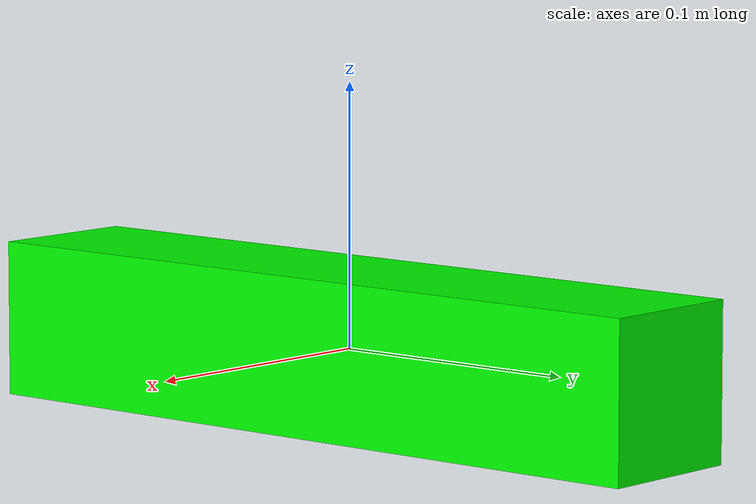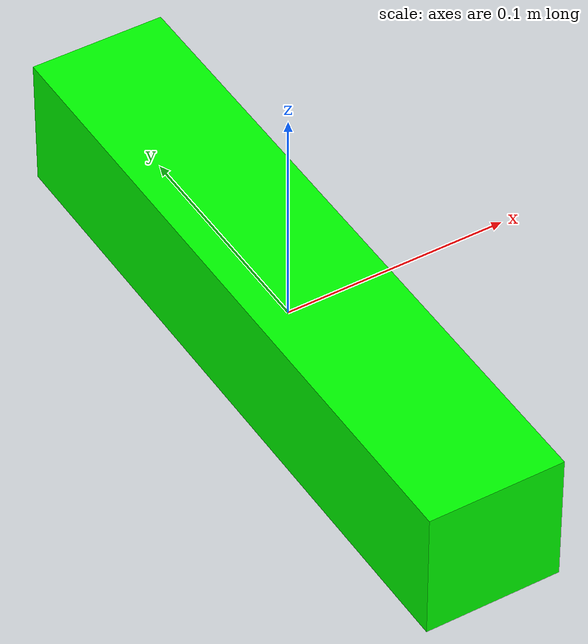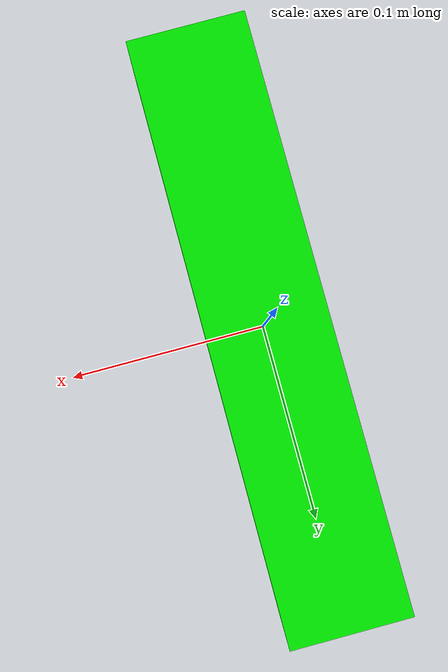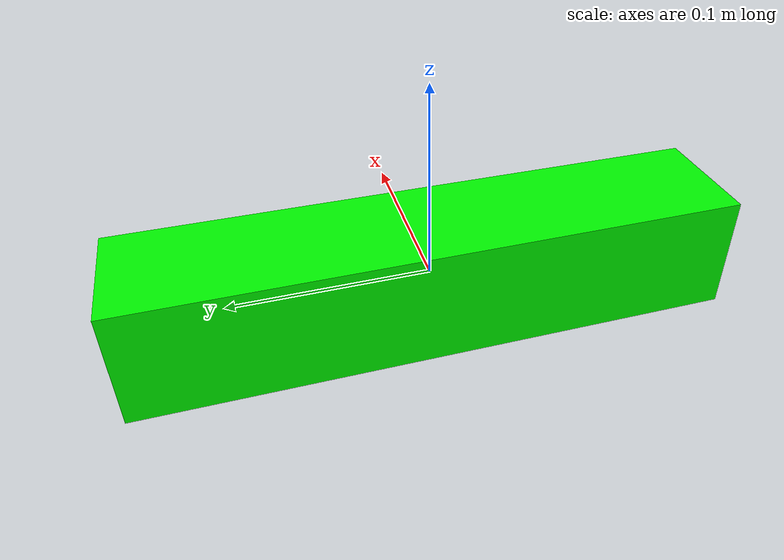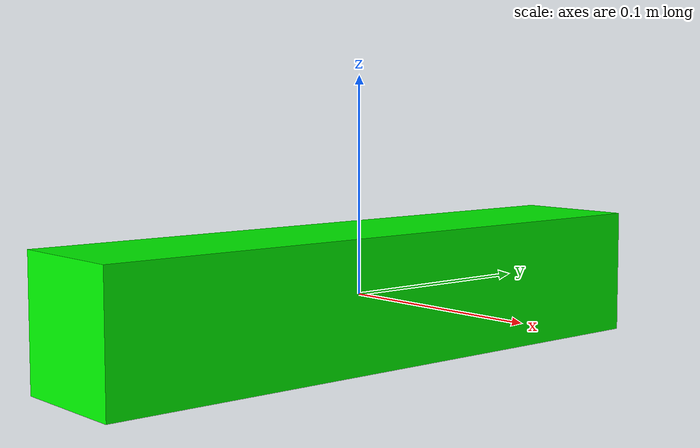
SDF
<?xml version="1.0"?>
<sdf version="1.7">
  <model name="block10">
    <pose> 0 0 0 0 0 0 </pose>
    <link name="block10_link">
      <inertial>
        <mass>0.2</mass>
        <inertia>
          <ixx>0.02569198670265349</ixx>
          <ixy>0.0</ixy>
          <ixz>0.0</ixz>
          <iyy>0.028155796674108682</iyy>
          <iyz>0.0</iyz>
          <izz>0.02569198670265349</izz>
        </inertia>
      </inertial>
      <collision name="collision">
        <geometry>
          <box>
            <size> 0.06 0.30000000000000004 0.06 </size>
          </box>
        </geometry>
        <surface>
            <friction>
                <ode>
                    <mu>1.0</mu>
                    <mu2>1.0</mu2>
                </ode>
            </friction>
        </surface>
      </collision>
      <visual name="visual">
        <geometry>
          <box>
            <size> 0.06 0.30000000000000004 0.06 </size>
          </box>
        </geometry>
        <material>
          <diffuse>0 1 0 1</diffuse>
        </material>
      </visual>
    </link>
  </model>
</sdf>
